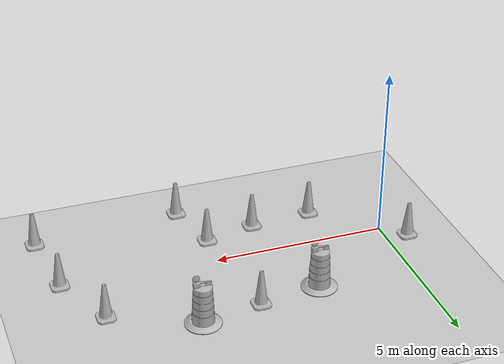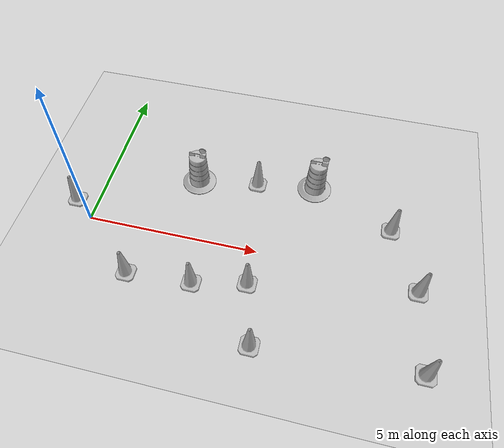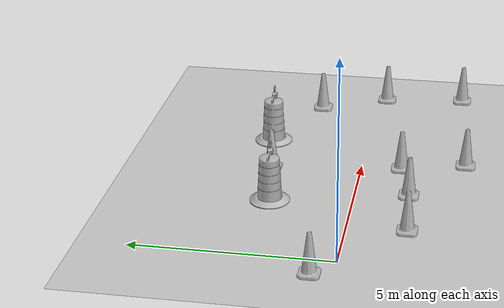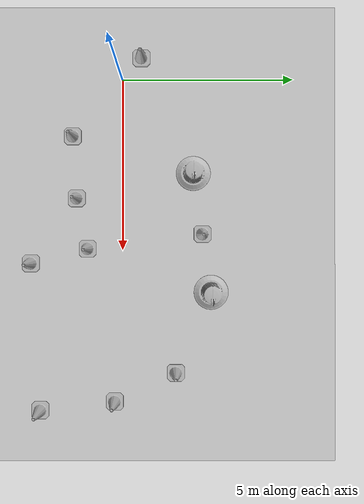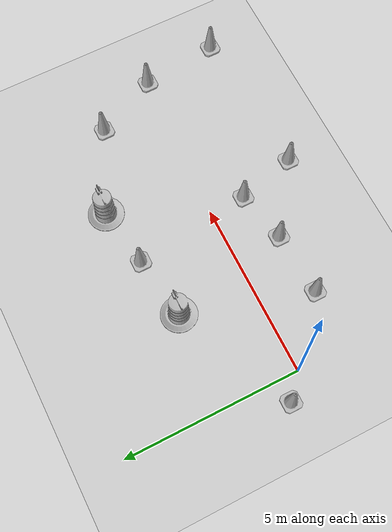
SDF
<sdf version="1.7">
 <world name="default">
  <light name="sun" type="directional">
   <pose>0 0 10 0 -0 0</pose>
   <diffuse>0.8 0.8 0.8 1</diffuse>
   <specular>0.2 0.2 0.2 1</specular>
   <attenuation>
    <range>1000</range>
    <constant>0.9</constant>
    <linear>0.01</linear>
    <quadratic>0.001</quadratic>
   </attenuation>
   <direction>-0.5 0.1 -0.9</direction>
   <spot><inner_angle>0</inner_angle><outer_angle>0</outer_angle><falloff>0</falloff></spot>
  </light>
  <model name="ground_plane">
   <static>1</static>
   <link name="link">
    <collision name="collision">
     <geometry><plane><normal>0 0 1</normal><size>100 100</size></plane></geometry>
     <surface>
      <contact><collide_bitmask>65535</collide_bitmask></contact>
      <friction><ode><mu>100</mu><mu2>50</mu2></ode></friction>
     </surface>
    </collision>
    <visual name="visual">
     <cast_shadows>0</cast_shadows>
     <geometry><plane><normal>0 0 1</normal><size>100 100</size></plane></geometry>
     <material>
      <script><uri>file://media/materials/scripts/gazebo.material</uri><name>Gazebo/Grey</name></script>
     </material>
    </visual>
   </link>
  </model>
  <gravity>0 0 -9.8</gravity>
  <magnetic_field>6e-06 2.3e-05 -4.2e-05</magnetic_field>
  <atmosphere type="adiabatic"/>
  <physics type="ode">
   <max_step_size>0.001</max_step_size>
   <real_time_factor>1</real_time_factor>
   <real_time_update_rate>1000</real_time_update_rate>
  </physics>
  <scene><ambient>0.4 0.4 0.4 1</ambient><background>0.7 0.7 0.7 1</background><shadows>1</shadows></scene>
  <spherical_coordinates>
   <surface_model>EARTH_WGS84</surface_model>
   <latitude_deg>0</latitude_deg>
   <longitude_deg>0</longitude_deg>
   <elevation>0</elevation>
   <heading_deg>0</heading_deg>
  </spherical_coordinates>
  <model name="Construction Barrel">
   <link name="link">
    <inertial>
     <pose>0 0 0.4 0 -0 0</pose>
     <mass>500</mass>
     <inertia><ixx>51.2096</ixx><iyy>51.2096</iyy><izz>25</izz><ixy>0</ixy><ixz>0</ixz><iyz>0</iyz></inertia>
    </inertial>
    <collision name="collision">
     <geometry><mesh><uri>model://construction_barrel/meshes/construction_barrel.dae</uri></mesh></geometry>
    </collision>
    <visual name="visual">
     <geometry><mesh><uri>model://construction_barrel/meshes/construction_barrel.dae</uri></mesh></geometry>
    </visual>
   </link>
   <pose>2.75194 2.07581 -0 0 0 -2.5e-05</pose>
  </model>
  <model name="Construction Cone">
   <link name="link">
    <collision name="collision">
     <geometry>
      <mesh><scale>10 10 10</scale><uri>model://construction_cone/meshes/construction_cone.dae</uri></mesh>
     </geometry>
    </collision>
    <visual name="visual">
     <geometry>
      <mesh><scale>10 10 10</scale><uri>model://construction_cone/meshes/construction_cone.dae</uri></mesh>
     </geometry>
    </visual>
    <inertial>
     <inertia><ixx>1</ixx><ixy>0</ixy><ixz>0</ixz><iyy>1</iyy><iyz>0</iyz><izz>1</izz></inertia>
     <mass>1</mass>
    </inertial>
   </link>
   <pose>4.53798 2.34419 -0 0 -0 0</pose>
  </model>
  <model name="Construction Barrel_0">
   <link name="link">
    <inertial>
     <pose>0 0 0.4 0 -0 0</pose>
     <mass>500</mass>
     <inertia><ixx>51.2096</ixx><iyy>51.2096</iyy><izz>25</izz><ixy>0</ixy><ixz>0</ixz><iyz>0</iyz></inertia>
    </inertial>
    <collision name="collision">
     <geometry><mesh><uri>model://construction_barrel/meshes/construction_barrel.dae</uri></mesh></geometry>
    </collision>
    <visual name="visual">
     <geometry><mesh><uri>model://construction_barrel/meshes/construction_barrel.dae</uri></mesh></geometry>
    </visual>
   </link>
   <pose>6.25271 2.59821 0 0 0 -2e-05</pose>
  </model>
  <model name="Construction Cone_0">
   <link name="link">
    <collision name="collision">
     <geometry>
      <mesh><scale>10 10 10</scale><uri>model://construction_cone/meshes/construction_cone.dae</uri></mesh>
     </geometry>
    </collision>
    <visual name="visual">
     <geometry>
      <mesh><scale>10 10 10</scale><uri>model://construction_cone/meshes/construction_cone.dae</uri></mesh>
     </geometry>
    </visual>
    <inertial>
     <inertia><ixx>1</ixx><ixy>0</ixy><ixz>0</ixz><iyy>1</iyy><iyz>0</iyz><izz>1</izz></inertia>
     <mass>1</mass>
    </inertial>
   </link>
   <pose>-0.633918 0.55065 -0 0 -1e-06 0</pose>
  </model>
  <model name="Construction Cone_1">
   <link name="link">
    <collision name="collision">
     <geometry>
      <mesh><scale>10 10 10</scale><uri>model://construction_cone/meshes/construction_cone.dae</uri></mesh>
     </geometry>
    </collision>
    <visual name="visual">
     <geometry>
      <mesh><scale>10 10 10</scale><uri>model://construction_cone/meshes/construction_cone.dae</uri></mesh>
     </geometry>
    </visual>
    <inertial>
     <inertia><ixx>1</ixx><ixy>0</ixy><ixz>0</ixz><iyy>1</iyy><iyz>0</iyz><izz>1</izz></inertia>
     <mass>1</mass>
    </inertial>
   </link>
   <pose>1.6636 -1.46684 -1e-05 -1e-06 0 0</pose>
  </model>
  <model name="Construction Cone_2">
   <link name="link">
    <collision name="collision">
     <geometry>
      <mesh><scale>10 10 10</scale><uri>model://construction_cone/meshes/construction_cone.dae</uri></mesh>
     </geometry>
    </collision>
    <visual name="visual">
     <geometry>
      <mesh><scale>10 10 10</scale><uri>model://construction_cone/meshes/construction_cone.dae</uri></mesh>
     </geometry>
    </visual>
    <inertial>
     <inertia><ixx>1</ixx><ixy>0</ixy><ixz>0</ixz><iyy>1</iyy><iyz>0</iyz><izz>1</izz></inertia>
     <mass>1</mass>
    </inertial>
   </link>
   <pose>3.4856 -1.35532 -8e-06 1e-06 -0 0</pose>
  </model>
  <model name="Construction Cone_3">
   <link name="link">
    <collision name="collision">
     <geometry>
      <mesh><scale>10 10 10</scale><uri>model://construction_cone/meshes/construction_cone.dae</uri></mesh>
     </geometry>
    </collision>
    <visual name="visual">
     <geometry>
      <mesh><scale>10 10 10</scale><uri>model://construction_cone/meshes/construction_cone.dae</uri></mesh>
     </geometry>
    </visual>
    <inertial>
     <inertia><ixx>1</ixx><ixy>0</ixy><ixz>0</ixz><iyy>1</iyy><iyz>0</iyz><izz>1</izz></inertia>
     <mass>1</mass>
    </inertial>
   </link>
   <pose>4.96788 -1.03412 -0 0 -0 0</pose>
  </model>
  <model name="Construction Cone_4">
   <link name="link">
    <collision name="collision">
     <geometry>
      <mesh><scale>10 10 10</scale><uri>model://construction_cone/meshes/construction_cone.dae</uri></mesh>
     </geometry>
    </collision>
    <visual name="visual">
     <geometry>
      <mesh><scale>10 10 10</scale><uri>model://construction_cone/meshes/construction_cone.dae</uri></mesh>
     </geometry>
    </visual>
    <inertial>
     <inertia><ixx>1</ixx><ixy>0</ixy><ixz>0</ixz><iyy>1</iyy><iyz>0</iyz><izz>1</izz></inertia>
     <mass>1</mass>
    </inertial>
   </link>
   <pose>8.6211 1.56125 -0 0 -0 0</pose>
  </model>
  <model name="Construction Cone_5">
   <link name="link">
    <collision name="collision">
     <geometry>
      <mesh><scale>10 10 10</scale><uri>model://construction_cone/meshes/construction_cone.dae</uri></mesh>
     </geometry>
    </collision>
    <visual name="visual">
     <geometry>
      <mesh><scale>10 10 10</scale><uri>model://construction_cone/meshes/construction_cone.dae</uri></mesh>
     </geometry>
    </visual>
    <inertial>
     <inertia><ixx>1</ixx><ixy>0</ixy><ixz>0</ixz><iyy>1</iyy><iyz>0</iyz><izz>1</izz></inertia>
     <mass>1</mass>
    </inertial>
   </link>
   <pose>9.4674 -0.236805 -0 0 -0 0</pose>
  </model>
  <model name="Construction Cone_6">
   <link name="link">
    <collision name="collision">
     <geometry>
      <mesh><scale>10 10 10</scale><uri>model://construction_cone/meshes/construction_cone.dae</uri></mesh>
     </geometry>
    </collision>
    <visual name="visual">
     <geometry>
      <mesh><scale>10 10 10</scale><uri>model://construction_cone/meshes/construction_cone.dae</uri></mesh>
     </geometry>
    </visual>
    <inertial>
     <inertia><ixx>1</ixx><ixy>0</ixy><ixz>0</ixz><iyy>1</iyy><iyz>0</iyz><izz>1</izz></inertia>
     <mass>1</mass>
    </inertial>
   </link>
   <pose>9.72057 -2.42686 -0 0 -0 0</pose>
  </model>
  <model name="Construction Cone_7">
   <link name="link">
    <collision name="collision">
     <geometry>
      <mesh><scale>10 10 10</scale><uri>model://construction_cone/meshes/construction_cone.dae</uri></mesh>
     </geometry>
    </collision>
    <visual name="visual">
     <geometry>
      <mesh><scale>10 10 10</scale><uri>model://construction_cone/meshes/construction_cone.dae</uri></mesh>
     </geometry>
    </visual>
    <inertial>
     <inertia><ixx>1</ixx><ixy>0</ixy><ixz>0</ixz><iyy>1</iyy><iyz>0</iyz><izz>1</izz></inertia>
     <mass>1</mass>
    </inertial>
   </link>
   <pose>5.39962 -2.70413 -0 0 -0 0</pose>
  </model>
 </world>
</sdf>
